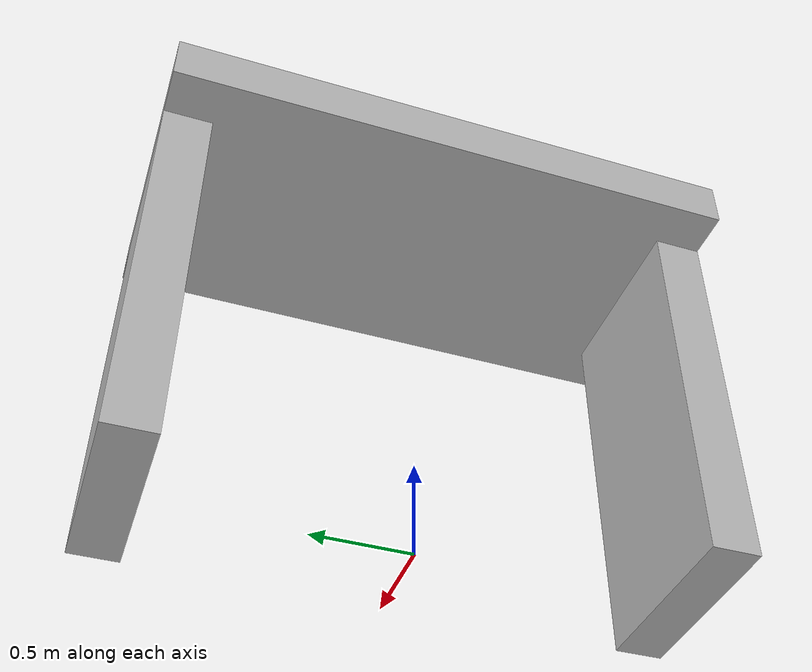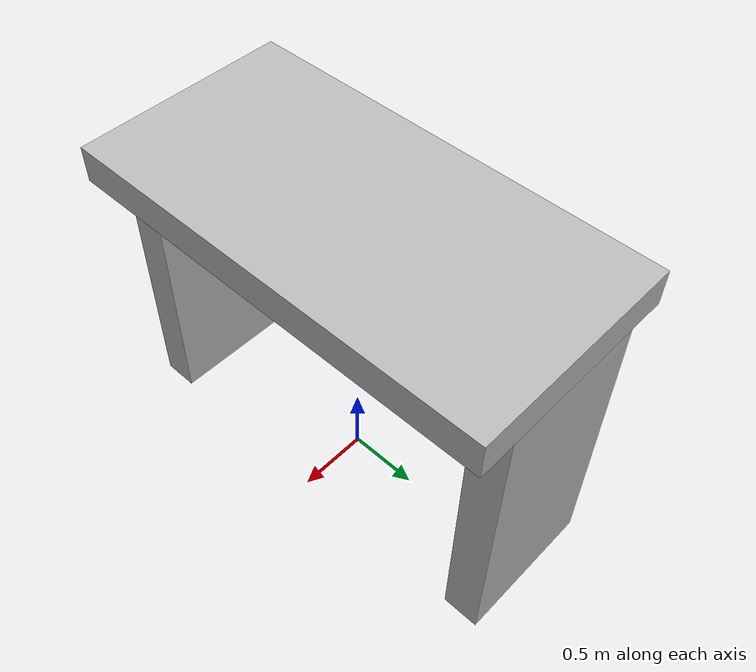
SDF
<?xml version="1.0"?>
<sdf version="1.4">
    <model name="gripper">

       <link name="plam">
            <pose>0 0 2.125 0 0 0 </pose>
            <inertial>
                                       <mass>12</mass>
        <inertia>
          <ixx>0.5</ixx>
          <ixy>0.0</ixy><iyy>0.5</iyy>
          <ixz>0.0</ixz><iyz>0.0</iyz><izz>1.0</izz>
</inertia>
            </inertial>
            <collision name="collision">

 			<surface>
          <friction>
            <ode>
              <mu>100000.0</mu>
              <mu2>100000.0</mu2>
              <slip1>0.0</slip1>
              <slip2>0.0</slip2>
            </ode>
          </friction>
        </surface>
                <geometry>
                    <box>
                        <size>1.5 3 0.25</size>
                    </box>
                </geometry>
            </collision>
            <visual name="visual">
                <geometry>
                    <box>
                        <size>1.5 3 0.25</size>
                    </box>
                </geometry>
            </visual>
        </link>

        <link name="right_finger">
            <pose>0 1.375 1 0  0 0 </pose>
            <inertial>
                                                 <mass>12</mass>
        <inertia>
          <ixx>0.5</ixx>
          <ixy>0.0</ixy><iyy>0.5</iyy>
          <ixz>0.0</ixz><iyz>0.0</iyz><izz>1.0</izz>
</inertia>
            </inertial>
            <collision name="collision">

 <surface>
          <friction>
            <ode>
              <mu>100000.0</mu>
              <mu2>100000.0</mu2>
              <slip1>0.0</slip1>
              <slip2>0.0</slip2>
            </ode>
          </friction>
        </surface>
                <geometry>

                    <box>
                        <size>1 0.25 2</size>
                    </box>
                </geometry>
            </collision>
            <visual name="visual">
                <geometry>

                    <box>
                        <size>1 0.25 2</size>
                    </box>
                </geometry>
            </visual>
        </link>

        <link name="left_finger">
            <pose>0 -1.375 1 0  0 0 </pose>
            <inertial>
                                                     <mass>12</mass>
        <inertia>
          <ixx>0.5</ixx>
          <ixy>0.0</ixy><iyy>0.5</iyy>
          <ixz>0.0</ixz><iyz>0.0</iyz><izz>1.0</izz>
				</inertia>
            </inertial>
            <collision name="collision">

 <surface>
          <friction>
            <ode>
              <mu>100000.0</mu>
              <mu2>100000.0</mu2>
              <slip1>0.0</slip1>
              <slip2>0.0</slip2>
            </ode>
          </friction>
        </surface>
                <geometry>

                    <box>
                        <size>1 0.25 2</size>
                    </box>
                </geometry>
            </collision>
            <visual name="visual">
                <geometry>

                    <box>
                        <size>1 0.25 2</size>
                    </box>
                </geometry>
            </visual>
        </link>

				<joint name="right_joint" type="prismatic">
            <pose>0  0 1 0 0 0</pose>
            <child>right_finger</child>
            <parent>plam</parent>
            <axis>
                <xyz>0 1 0</xyz>
															<limit><lower>-0.751</lower><upper>0</upper></limit>
            </axis>
        </joint>

        <joint name="left_joint" type="prismatic">
            <pose>0 0 1 0 0 0</pose>
            <child>left_finger</child>
            <parent>plam</parent>
            <axis>
							<xyz>0 1 0 </xyz>

<limit><lower>0</lower><upper>0.751</upper></limit>
						</axis>
        </joint>

		<plugin name="df" filename="/home/gotony5614/Dropbox/gazebo/XLAB/gripppertest/dist/Debug/GNU-Linux-x86/libgripppertest.so"/>

    </model>
</sdf>
